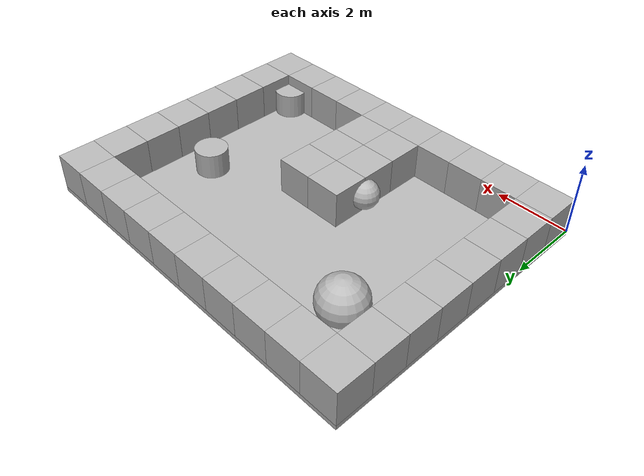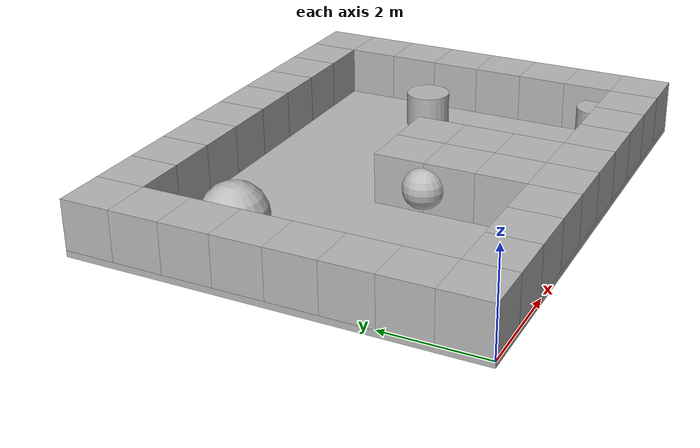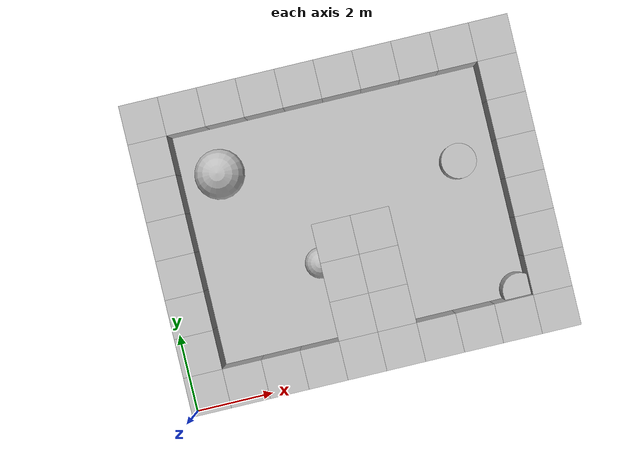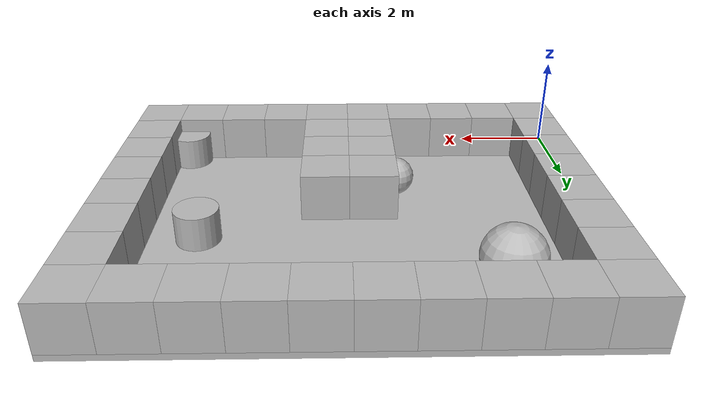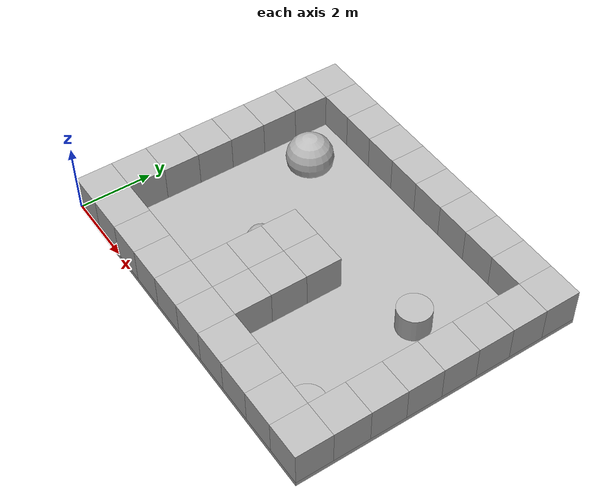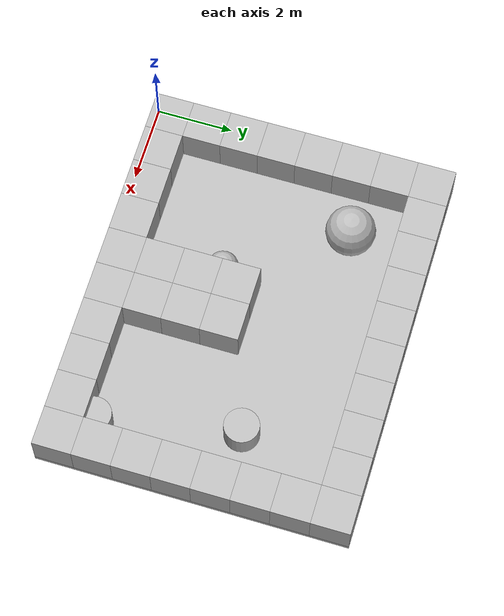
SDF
<sdf version="1.4">
  <world name="default">
    <light name="sun" type="directional">
      <cast_shadows>1</cast_shadows>
      <diffuse>0.8 0.8 0.8 1</diffuse>
      <specular>0.1 0.1 0.1 1</specular>
      <attenuation>
        <range>1000</range>
        <constant>0.9</constant>
        <linear>0.01</linear>
        <quadratic>0.001</quadratic>
      </attenuation>
      <direction>-0.5 0.5 -1</direction>
    </light>
    <model name="floor">
      <pose>5.0 4.0 -0.0625 0 0 0</pose>
      <static>true</static>
      <link name="link">
        <collision name="collision">
          <geometry>
            <box>
              <size>10.0 8.0 0.125</size>
            </box>
          </geometry>
        </collision>
        <visual name="visual">
          <geometry>
            <box>
              <size>10.0 8.0 0.125</size>
            </box>
          </geometry>
        </visual>
      </link>
    </model>
    <model name="box_0_0">
      <pose>0.5 0.5 0.5 0 0 0</pose>
      <static>true</static>
      <link name="link">
        <collision name="collision">
          <geometry>
            <box>
              <size>1.0 1.0 1.0</size>
            </box>
          </geometry>
        </collision>
        <visual name="visual">
          <geometry>
            <box>
              <size>1.0 1.0 1.0</size>
            </box>
          </geometry>
        </visual>
      </link>
    </model>
    <model name="box_0_1">
      <pose>0.5 1.5 0.5 0 0 0</pose>
      <static>true</static>
      <link name="link">
        <collision name="collision">
          <geometry>
            <box>
              <size>1.0 1.0 1.0</size>
            </box>
          </geometry>
        </collision>
        <visual name="visual">
          <geometry>
            <box>
              <size>1.0 1.0 1.0</size>
            </box>
          </geometry>
        </visual>
      </link>
    </model>
    <model name="box_0_2">
      <pose>0.5 2.5 0.5 0 0 0</pose>
      <static>true</static>
      <link name="link">
        <collision name="collision">
          <geometry>
            <box>
              <size>1.0 1.0 1.0</size>
            </box>
          </geometry>
        </collision>
        <visual name="visual">
          <geometry>
            <box>
              <size>1.0 1.0 1.0</size>
            </box>
          </geometry>
        </visual>
      </link>
    </model>

    <model name="landmark1">
      <pose>4 3 0.5 0 0 0</pose>
      <static>true</static>
      <link name="link">
        <collision name="collision">
          <geometry>
            <sphere>
              <radius>0.4</radius>
            </sphere>
          </geometry>
        </collision>
        <visual name="visual">
          <geometry>
            <sphere>
              <radius>0.4</radius>
            </sphere>
          </geometry>
        </visual>
      </link>
    </model>

    <model name="box_0_3">
      <pose>0.5 3.5 0.5 0 0 0</pose>
      <static>true</static>
      <link name="link">
        <collision name="collision">
          <geometry>
            <box>
              <size>1.0 1.0 1.0</size>
            </box>
          </geometry>
        </collision>
        <visual name="visual">
          <geometry>
            <box>
              <size>1.0 1.0 1.0</size>
            </box>
          </geometry>
        </visual>
      </link>
    </model>
    <model name="box_0_4">
      <pose>0.5 4.5 0.5 0 0 0</pose>
      <static>true</static>
      <link name="link">
        <collision name="collision">
          <geometry>
            <box>
              <size>1.0 1.0 1.0</size>
            </box>
          </geometry>
        </collision>
        <visual name="visual">
          <geometry>
            <box>
              <size>1.0 1.0 1.0</size>
            </box>
          </geometry>
        </visual>
      </link>
    </model>
    <model name="box_0_5">
      <pose>0.5 5.5 0.5 0 0 0</pose>
      <static>true</static>
      <link name="link">
        <collision name="collision">
          <geometry>
            <box>
              <size>1.0 1.0 1.0</size>
            </box>
          </geometry>
        </collision>
        <visual name="visual">
          <geometry>
            <box>
              <size>1.0 1.0 1.0</size>
            </box>
          </geometry>
        </visual>
      </link>
    </model>
    <model name="box_0_6">
      <pose>0.5 6.5 0.5 0 0 0</pose>
      <static>true</static>
      <link name="link">
        <collision name="collision">
          <geometry>
            <box>
              <size>1.0 1.0 1.0</size>
            </box>
          </geometry>
        </collision>
        <visual name="visual">
          <geometry>
            <box>
              <size>1.0 1.0 1.0</size>
            </box>
          </geometry>
        </visual>
      </link>
    </model>
    <model name="box_0_7">
      <pose>0.5 7.5 0.5 0 0 0</pose>
      <static>true</static>
      <link name="link">
        <collision name="collision">
          <geometry>
            <box>
              <size>1.0 1.0 1.0</size>
            </box>
          </geometry>
        </collision>
        <visual name="visual">
          <geometry>
            <box>
              <size>1.0 1.0 1.0</size>
            </box>
          </geometry>
        </visual>
      </link>
    </model>

    <model name="landmark2">
      <pose>2 5.8 0.25 0 0 0</pose>
      <static>true</static>
      <link name="link">
        <collision name="collision">
          <geometry>
            <sphere>
              <radius>0.55</radius>
            </sphere>
          </geometry>
        </collision>
        <visual name="visual">
          <geometry>
            <sphere>
              <radius>0.65</radius>
            </sphere>
          </geometry>
        </visual>
      </link>
    </model>

    <model name="landmark3">
      <pose>8 4.7 0.25 0 0 0</pose>
      <static>true</static>
      <link name="link">
        <collision name="collision">
          <geometry>
            <cylinder>
              <radius>.35</radius>
              <length>.8</length>
            </cylinder>
          </geometry>
        </collision>
        <visual name="visual">
          <geometry>
            <cylinder>
              <radius>.45</radius>
              <length>.9</length>
            </cylinder>
          </geometry>
        </visual>
      </link>
    </model>

    <model name="landmark4">
      <pose>8.75 1.15 0.25 0 0 0</pose>
      <static>true</static>
      <link name="link">
        <collision name="collision">
          <geometry>
            <cylinder>
              <radius>.35</radius>
              <length>.8</length>
            </cylinder>
          </geometry>
        </collision>
        <visual name="visual">
          <geometry>
            <cylinder>
              <radius>.45</radius>
              <length>.9</length>
            </cylinder>
          </geometry>
        </visual>
      </link>
    </model>

    <model name="box_1_0">
      <pose>1.5 0.5 0.5 0 0 0</pose>
      <static>true</static>
      <link name="link">
        <collision name="collision">
          <geometry>
            <box>
              <size>1.0 1.0 1.0</size>
            </box>
          </geometry>
        </collision>
        <visual name="visual">
          <geometry>
            <box>
              <size>1.0 1.0 1.0</size>
            </box>
          </geometry>
        </visual>
      </link>
    </model>
    <model name="box_1_7">
      <pose>1.5 7.5 0.5 0 0 0</pose>
      <static>true</static>
      <link name="link">
        <collision name="collision">
          <geometry>
            <box>
              <size>1.0 1.0 1.0</size>
            </box>
          </geometry>
        </collision>
        <visual name="visual">
          <geometry>
            <box>
              <size>1.0 1.0 1.0</size>
            </box>
          </geometry>
        </visual>
      </link>
    </model>
    <model name="box_2_0">
      <pose>2.5 0.5 0.5 0 0 0</pose>
      <static>true</static>
      <link name="link">
        <collision name="collision">
          <geometry>
            <box>
              <size>1.0 1.0 1.0</size>
            </box>
          </geometry>
        </collision>
        <visual name="visual">
          <geometry>
            <box>
              <size>1.0 1.0 1.0</size>
            </box>
          </geometry>
        </visual>
      </link>
    </model>
    <model name="box_2_7">
      <pose>2.5 7.5 0.5 0 0 0</pose>
      <static>true</static>
      <link name="link">
        <collision name="collision">
          <geometry>
            <box>
              <size>1.0 1.0 1.0</size>
            </box>
          </geometry>
        </collision>
        <visual name="visual">
          <geometry>
            <box>
              <size>1.0 1.0 1.0</size>
            </box>
          </geometry>
        </visual>
      </link>
    </model>
    <model name="box_3_0">
      <pose>3.5 0.5 0.5 0 0 0</pose>
      <static>true</static>
      <link name="link">
        <collision name="collision">
          <geometry>
            <box>
              <size>1.0 1.0 1.0</size>
            </box>
          </geometry>
        </collision>
        <visual name="visual">
          <geometry>
            <box>
              <size>1.0 1.0 1.0</size>
            </box>
          </geometry>
        </visual>
      </link>
    </model>
    <model name="box_3_7">
      <pose>3.5 7.5 0.5 0 0 0</pose>
      <static>true</static>
      <link name="link">
        <collision name="collision">
          <geometry>
            <box>
              <size>1.0 1.0 1.0</size>
            </box>
          </geometry>
        </collision>
        <visual name="visual">
          <geometry>
            <box>
              <size>1.0 1.0 1.0</size>
            </box>
          </geometry>
        </visual>
      </link>
    </model>
    <model name="box_4_0">
      <pose>4.5 0.5 0.5 0 0 0</pose>
      <static>true</static>
      <link name="link">
        <collision name="collision">
          <geometry>
            <box>
              <size>1.0 1.0 1.0</size>
            </box>
          </geometry>
        </collision>
        <visual name="visual">
          <geometry>
            <box>
              <size>1.0 1.0 1.0</size>
            </box>
          </geometry>
        </visual>
      </link>
    </model>
    <model name="box_4_1">
      <pose>4.5 1.5 0.5 0 0 0</pose>
      <static>true</static>
      <link name="link">
        <collision name="collision">
          <geometry>
            <box>
              <size>1.0 1.0 1.0</size>
            </box>
          </geometry>
        </collision>
        <visual name="visual">
          <geometry>
            <box>
              <size>1.0 1.0 1.0</size>
            </box>
          </geometry>
        </visual>
      </link>
    </model>
    <model name="box_4_2">
      <pose>4.5 2.5 0.5 0 0 0</pose>
      <static>true</static>
      <link name="link">
        <collision name="collision">
          <geometry>
            <box>
              <size>1.0 1.0 1.0</size>
            </box>
          </geometry>
        </collision>
        <visual name="visual">
          <geometry>
            <box>
              <size>1.0 1.0 1.0</size>
            </box>
          </geometry>
        </visual>
      </link>
    </model>
    <model name="box_4_3">
      <pose>4.5 3.5 0.5 0 0 0</pose>
      <static>true</static>
      <link name="link">
        <collision name="collision">
          <geometry>
            <box>
              <size>1.0 1.0 1.0</size>
            </box>
          </geometry>
        </collision>
        <visual name="visual">
          <geometry>
            <box>
              <size>1.0 1.0 1.0</size>
            </box>
          </geometry>
        </visual>
      </link>
    </model>
    <model name="box_4_7">
      <pose>4.5 7.5 0.5 0 0 0</pose>
      <static>true</static>
      <link name="link">
        <collision name="collision">
          <geometry>
            <box>
              <size>1.0 1.0 1.0</size>
            </box>
          </geometry>
        </collision>
        <visual name="visual">
          <geometry>
            <box>
              <size>1.0 1.0 1.0</size>
            </box>
          </geometry>
        </visual>
      </link>
    </model>
    <model name="box_5_0">
      <pose>5.5 0.5 0.5 0 0 0</pose>
      <static>true</static>
      <link name="link">
        <collision name="collision">
          <geometry>
            <box>
              <size>1.0 1.0 1.0</size>
            </box>
          </geometry>
        </collision>
        <visual name="visual">
          <geometry>
            <box>
              <size>1.0 1.0 1.0</size>
            </box>
          </geometry>
        </visual>
      </link>
    </model>
    <model name="box_5_1">
      <pose>5.5 1.5 0.5 0 0 0</pose>
      <static>true</static>
      <link name="link">
        <collision name="collision">
          <geometry>
            <box>
              <size>1.0 1.0 1.0</size>
            </box>
          </geometry>
        </collision>
        <visual name="visual">
          <geometry>
            <box>
              <size>1.0 1.0 1.0</size>
            </box>
          </geometry>
        </visual>
      </link>
    </model>
    <model name="box_5_2">
      <pose>5.5 2.5 0.5 0 0 0</pose>
      <static>true</static>
      <link name="link">
        <collision name="collision">
          <geometry>
            <box>
              <size>1.0 1.0 1.0</size>
            </box>
          </geometry>
        </collision>
        <visual name="visual">
          <geometry>
            <box>
              <size>1.0 1.0 1.0</size>
            </box>
          </geometry>
        </visual>
      </link>
    </model>
    <model name="box_5_3">
      <pose>5.5 3.5 0.5 0 0 0</pose>
      <static>true</static>
      <link name="link">
        <collision name="collision">
          <geometry>
            <box>
              <size>1.0 1.0 1.0</size>
            </box>
          </geometry>
        </collision>
        <visual name="visual">
          <geometry>
            <box>
              <size>1.0 1.0 1.0</size>
            </box>
          </geometry>
        </visual>
      </link>
    </model>
    <model name="box_5_7">
      <pose>5.5 7.5 0.5 0 0 0</pose>
      <static>true</static>
      <link name="link">
        <collision name="collision">
          <geometry>
            <box>
              <size>1.0 1.0 1.0</size>
            </box>
          </geometry>
        </collision>
        <visual name="visual">
          <geometry>
            <box>
              <size>1.0 1.0 1.0</size>
            </box>
          </geometry>
        </visual>
      </link>
    </model>
    <model name="box_6_0">
      <pose>6.5 0.5 0.5 0 0 0</pose>
      <static>true</static>
      <link name="link">
        <collision name="collision">
          <geometry>
            <box>
              <size>1.0 1.0 1.0</size>
            </box>
          </geometry>
        </collision>
        <visual name="visual">
          <geometry>
            <box>
              <size>1.0 1.0 1.0</size>
            </box>
          </geometry>
        </visual>
      </link>
    </model>
    <model name="box_6_7">
      <pose>6.5 7.5 0.5 0 0 0</pose>
      <static>true</static>
      <link name="link">
        <collision name="collision">
          <geometry>
            <box>
              <size>1.0 1.0 1.0</size>
            </box>
          </geometry>
        </collision>
        <visual name="visual">
          <geometry>
            <box>
              <size>1.0 1.0 1.0</size>
            </box>
          </geometry>
        </visual>
      </link>
    </model>
    <model name="box_7_0">
      <pose>7.5 0.5 0.5 0 0 0</pose>
      <static>true</static>
      <link name="link">
        <collision name="collision">
          <geometry>
            <box>
              <size>1.0 1.0 1.0</size>
            </box>
          </geometry>
        </collision>
        <visual name="visual">
          <geometry>
            <box>
              <size>1.0 1.0 1.0</size>
            </box>
          </geometry>
        </visual>
      </link>
    </model>
    <model name="box_7_7">
      <pose>7.5 7.5 0.5 0 0 0</pose>
      <static>true</static>
      <link name="link">
        <collision name="collision">
          <geometry>
            <box>
              <size>1.0 1.0 1.0</size>
            </box>
          </geometry>
        </collision>
        <visual name="visual">
          <geometry>
            <box>
              <size>1.0 1.0 1.0</size>
            </box>
          </geometry>
        </visual>
      </link>
    </model>
    <model name="box_8_0">
      <pose>8.5 0.5 0.5 0 0 0</pose>
      <static>true</static>
      <link name="link">
        <collision name="collision">
          <geometry>
            <box>
              <size>1.0 1.0 1.0</size>
            </box>
          </geometry>
        </collision>
        <visual name="visual">
          <geometry>
            <box>
              <size>1.0 1.0 1.0</size>
            </box>
          </geometry>
        </visual>
      </link>
    </model>
    <model name="box_8_7">
      <pose>8.5 7.5 0.5 0 0 0</pose>
      <static>true</static>
      <link name="link">
        <collision name="collision">
          <geometry>
            <box>
              <size>1.0 1.0 1.0</size>
            </box>
          </geometry>
        </collision>
        <visual name="visual">
          <geometry>
            <box>
              <size>1.0 1.0 1.0</size>
            </box>
          </geometry>
        </visual>
      </link>
    </model>
    <model name="box_9_0">
      <pose>9.5 0.5 0.5 0 0 0</pose>
      <static>true</static>
      <link name="link">
        <collision name="collision">
          <geometry>
            <box>
              <size>1.0 1.0 1.0</size>
            </box>
          </geometry>
        </collision>
        <visual name="visual">
          <geometry>
            <box>
              <size>1.0 1.0 1.0</size>
            </box>
          </geometry>
        </visual>
      </link>
    </model>
    <model name="box_9_1">
      <pose>9.5 1.5 0.5 0 0 0</pose>
      <static>true</static>
      <link name="link">
        <collision name="collision">
          <geometry>
            <box>
              <size>1.0 1.0 1.0</size>
            </box>
          </geometry>
        </collision>
        <visual name="visual">
          <geometry>
            <box>
              <size>1.0 1.0 1.0</size>
            </box>
          </geometry>
        </visual>
      </link>
    </model>
    <model name="box_9_2">
      <pose>9.5 2.5 0.5 0 0 0</pose>
      <static>true</static>
      <link name="link">
        <collision name="collision">
          <geometry>
            <box>
              <size>1.0 1.0 1.0</size>
            </box>
          </geometry>
        </collision>
        <visual name="visual">
          <geometry>
            <box>
              <size>1.0 1.0 1.0</size>
            </box>
          </geometry>
        </visual>
      </link>
    </model>
    <model name="box_9_3">
      <pose>9.5 3.5 0.5 0 0 0</pose>
      <static>true</static>
      <link name="link">
        <collision name="collision">
          <geometry>
            <box>
              <size>1.0 1.0 1.0</size>
            </box>
          </geometry>
        </collision>
        <visual name="visual">
          <geometry>
            <box>
              <size>1.0 1.0 1.0</size>
            </box>
          </geometry>
        </visual>
      </link>
    </model>
    <model name="box_9_4">
      <pose>9.5 4.5 0.5 0 0 0</pose>
      <static>true</static>
      <link name="link">
        <collision name="collision">
          <geometry>
            <box>
              <size>1.0 1.0 1.0</size>
            </box>
          </geometry>
        </collision>
        <visual name="visual">
          <geometry>
            <box>
              <size>1.0 1.0 1.0</size>
            </box>
          </geometry>
        </visual>
      </link>
    </model>
    <model name="box_9_5">
      <pose>9.5 5.5 0.5 0 0 0</pose>
      <static>true</static>
      <link name="link">
        <collision name="collision">
          <geometry>
            <box>
              <size>1.0 1.0 1.0</size>
            </box>
          </geometry>
        </collision>
        <visual name="visual">
          <geometry>
            <box>
              <size>1.0 1.0 1.0</size>
            </box>
          </geometry>
        </visual>
      </link>
    </model>
    <model name="box_9_6">
      <pose>9.5 6.5 0.5 0 0 0</pose>
      <static>true</static>
      <link name="link">
        <collision name="collision">
          <geometry>
            <box>
              <size>1.0 1.0 1.0</size>
            </box>
          </geometry>
        </collision>
        <visual name="visual">
          <geometry>
            <box>
              <size>1.0 1.0 1.0</size>
            </box>
          </geometry>
        </visual>
      </link>
    </model>
    <model name="box_9_7">
      <pose>9.5 7.5 0.5 0 0 0</pose>
      <static>true</static>
      <link name="link">
        <collision name="collision">
          <geometry>
            <box>
              <size>1.0 1.0 1.0</size>
            </box>
          </geometry>
        </collision>
        <visual name="visual">
          <geometry>
            <box>
              <size>1.0 1.0 1.0</size>
            </box>
          </geometry>
        </visual>
      </link>
    </model>
  </world>
</sdf>
